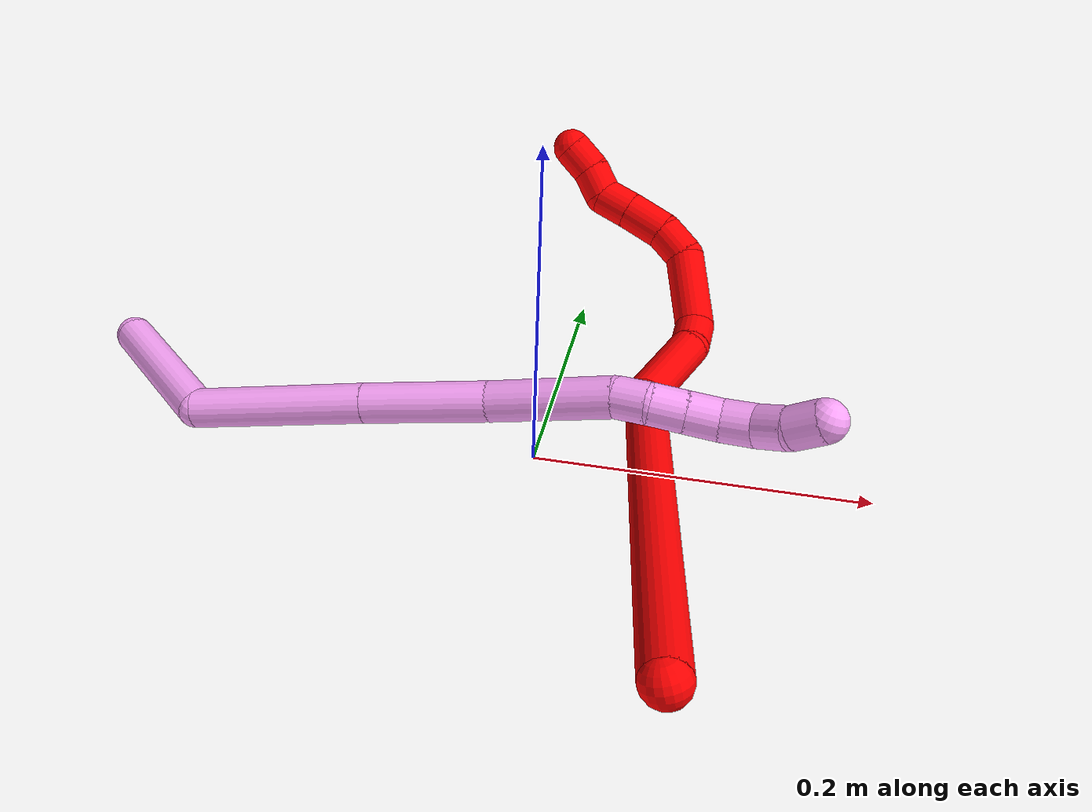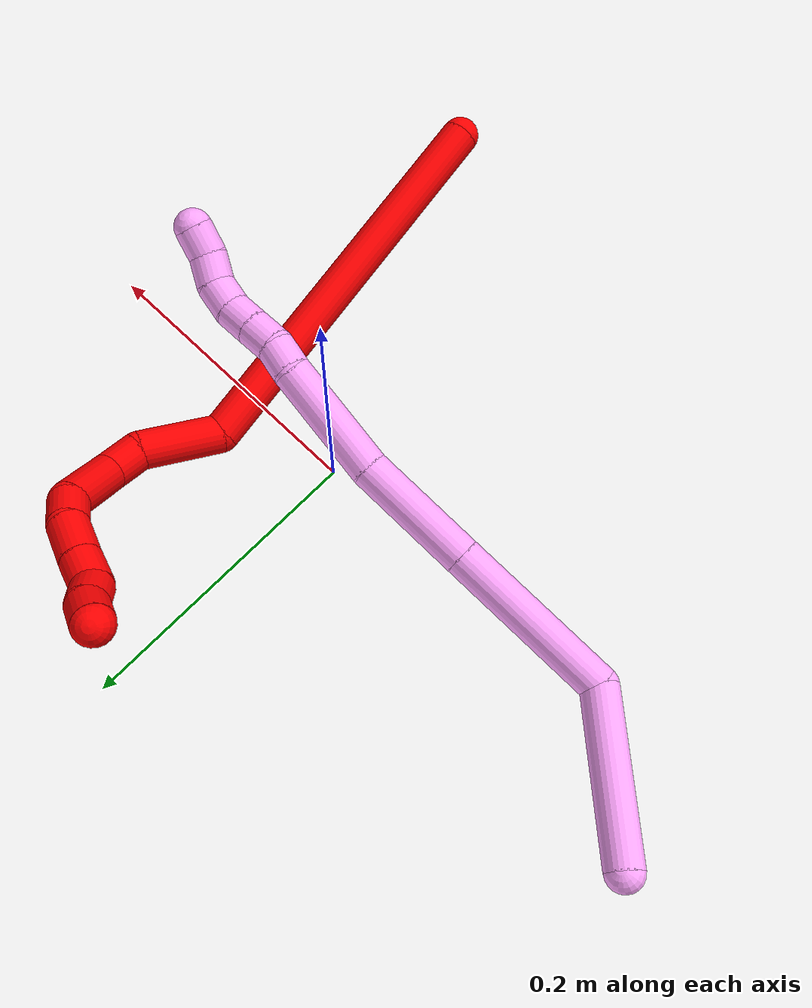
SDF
<sdf version="1.7">
 <world name="default">
  <model name="photoneo_s_sensor">
   <static>1</static>
   <pose>0 0 2 1.57079 1.57079 3.14159</pose>
   <link name="link">
    <inertial><mass>0.1</mass></inertial>
    <sensor name="sensor" type="depth">
     <update_rate>30</update_rate>
     <camera>
      <horizontal_fov>1.22</horizontal_fov>
      <image><width>1920</width><height>1200</height><format>B8G8R8</format></image>
      <clip><near>0.1</near><far>4</far></clip>
      <depth_camera><output>points</output></depth_camera>
     </camera>
     <plugin name="camera_plugin" filename="libgazebo_ros_depth_camera.so">
      <baseline>0.2</baseline>
      <alwaysOn>1</alwaysOn>
      <updateRate>0.0</updateRate>
      <cameraName>camera_ir</cameraName>
      <imageTopicName>/camera/color/image_raw</imageTopicName>
      <cameraInfoTopicName>/camera/color/camera_info</cameraInfoTopicName>
      <depthImageTopicName>/camera/depth/image_raw</depthImageTopicName>
      <depthImageCameraInfoTopicName>/camera/depth/camera_info</depthImageCameraInfoTopicName>
      <pointCloudTopicName>/camera/depth/points</pointCloudTopicName>
      <frameName>fr_optical</frameName>
      <pointCloudCutoff>0.1</pointCloudCutoff>
      <pointCloudCutoffMax>2.0</pointCloudCutoffMax>
      <distortionK1>0</distortionK1>
      <distortionK2>0</distortionK2>
      <distortionK3>0</distortionK3>
      <distortionT1>0</distortionT1>
      <distortionT2>0</distortionT2>
      <CxPrime>0</CxPrime>
      <Cx>0</Cx>
      <Cy>0</Cy>
      <focalLength>0</focalLength>
      <hackBaseline>0</hackBaseline>
     </plugin>
    </sensor>
   </link>
  </model>
  <model name="bin">
   <static>1</static>
   <link name="bottom">
    <collision name="collision-bottom">
     <pose>0 0 -0.01 0 -0 0</pose>
     <geometry><box><size>0.8 0.6 0.02</size></box></geometry>
     <surface>
      <friction><ode><mu>100</mu><mu2>100</mu2></ode></friction>
      <contact><collide_bitmask>65535</collide_bitmask></contact>
     </surface>
    </collision>
   </link>
   <link name="west_wall">
    <collision name="collision-west_wall">
     <pose>-0.41 0 0.1 0 -0 0</pose>
     <geometry><box><size>0.02 0.6 0.2</size></box></geometry>
     <surface>
      <friction><ode><mu>100</mu><mu2>100</mu2></ode></friction>
      <contact><collide_bitmask>65535</collide_bitmask></contact>
     </surface>
    </collision>
   </link>
   <link name="east_wall">
    <collision name="collision-east_wall">
     <pose>0.41 0 0.1 0 -0 0</pose>
     <geometry><box><size>0.02 0.6 0.2</size></box></geometry>
     <surface>
      <friction><ode><mu>100</mu><mu2>100</mu2></ode></friction>
      <contact><collide_bitmask>65535</collide_bitmask></contact>
     </surface>
    </collision>
   </link>
   <link name="south_wall">
    <collision name="collision-south_wall">
     <pose>0 -0.31 0.1 0 -0 0</pose>
     <geometry><box><size>0.8 0.02 0.2</size></box></geometry>
     <surface>
      <friction><ode><mu>100</mu><mu2>100</mu2></ode></friction>
      <contact><collide_bitmask>65535</collide_bitmask></contact>
     </surface>
    </collision>
   </link>
   <link name="north_wall">
    <collision name="collision-north_wall">
     <pose>0 0.31 0.1 0 -0 0</pose>
     <geometry><box><size>0.8 0.02 0.2</size></box></geometry>
     <surface>
      <friction><ode><mu>100</mu><mu2>100</mu2></ode></friction>
      <contact><collide_bitmask>65535</collide_bitmask></contact>
     </surface>
    </collision>
   </link>
  </model>
  <model name="2">
   <static>0</static>
   <link name="2">
    <collision name="collision-cylinder-e_1_1_4">
     <pose>0.032404 0.125306 0.023865 -1.3826 0.248768 -0.206196</pose>
     <geometry><cylinder><radius>0.0125</radius><length>0.263219</length></cylinder></geometry>
     <surface>
      <friction><ode><mu>1.16</mu><mu2>1.16</mu2><slip1>0</slip1><slip2>0</slip2></ode></friction>
      <contact><ode><kp>1e+06</kp><kd>1</kd><max_vel>0</max_vel><min_depth>0.001</min_depth></ode></contact>
     </surface>
    </collision>
    <visual name="visual-cylinder-e_1_1_4">
     <pose>0.032404 0.125306 0.023865 -1.3826 0.248768 -0.206196</pose>
     <geometry><cylinder><radius>0.0125</radius><length>0.263219</length></cylinder></geometry>
     <material><ambient>1 0 0 1</ambient></material>
    </visual>
    <collision name="collision-cylinder-e_2_4_5">
     <pose>0.085238 0.265476 0.055609 -1.08332 0.881918 -0.553368</pose>
     <geometry><cylinder><radius>0.0125</radius><length>0.052931</length></cylinder></geometry>
     <surface>
      <friction><ode><mu>1.16</mu><mu2>1.16</mu2><slip1>0</slip1><slip2>0</slip2></ode></friction>
      <contact><ode><kp>1e+06</kp><kd>1</kd><max_vel>0</max_vel><min_depth>0.001</min_depth></ode></contact>
     </surface>
    </collision>
    <visual name="visual-cylinder-e_2_4_5">
     <pose>0.085238 0.265476 0.055609 -1.08332 0.881918 -0.553368</pose>
     <geometry><cylinder><radius>0.0125</radius><length>0.052931</length></cylinder></geometry>
     <material><ambient>1 0 0 1</ambient></material>
    </visual>
    <collision name="collision-cylinder-e_3_5_6">
     <pose>0.110939 0.289972 0.067263 -1.19744 0.471247 -0.324715</pose>
     <geometry><cylinder><radius>0.0125</radius><length>0.023221</length></cylinder></geometry>
     <surface>
      <friction><ode><mu>1.16</mu><mu2>1.16</mu2><slip1>0</slip1><slip2>0</slip2></ode></friction>
      <contact><ode><kp>1e+06</kp><kd>1</kd><max_vel>0</max_vel><min_depth>0.001</min_depth></ode></contact>
     </surface>
    </collision>
    <visual name="visual-cylinder-e_3_5_6">
     <pose>0.110939 0.289972 0.067263 -1.19744 0.471247 -0.324715</pose>
     <geometry><cylinder><radius>0.0125</radius><length>0.023221</length></cylinder></geometry>
     <material><ambient>1 0 0 1</ambient></material>
    </visual>
    <collision name="collision-cylinder-e_4_6_7">
     <pose>0.120197 0.310371 0.092826 -0.458919 0.162561 -0.038049</pose>
     <geometry><cylinder><radius>0.0125</radius><length>0.04926</length></cylinder></geometry>
     <surface>
      <friction><ode><mu>1.16</mu><mu2>1.16</mu2><slip1>0</slip1><slip2>0</slip2></ode></friction>
      <contact><ode><kp>1e+06</kp><kd>1</kd><max_vel>0</max_vel><min_depth>0.001</min_depth></ode></contact>
     </surface>
    </collision>
    <visual name="visual-cylinder-e_4_6_7">
     <pose>0.120197 0.310371 0.092826 -0.458919 0.162561 -0.038049</pose>
     <geometry><cylinder><radius>0.0125</radius><length>0.04926</length></cylinder></geometry>
     <material><ambient>1 0 0 1</ambient></material>
    </visual>
    <collision name="collision-cylinder-e_5_7_8">
     <pose>0.12009 0.326475 0.123449 -0.543604 -0.377602 0.106405</pose>
     <geometry><cylinder><radius>0.0125</radius><length>0.022204</length></cylinder></geometry>
     <surface>
      <friction><ode><mu>1.16</mu><mu2>1.16</mu2><slip1>0</slip1><slip2>0</slip2></ode></friction>
      <contact><ode><kp>1e+06</kp><kd>1</kd><max_vel>0</max_vel><min_depth>0.001</min_depth></ode></contact>
     </surface>
    </collision>
    <visual name="visual-cylinder-e_5_7_8">
     <pose>0.12009 0.326475 0.123449 -0.543604 -0.377602 0.106405</pose>
     <geometry><cylinder><radius>0.0125</radius><length>0.022204</length></cylinder></geometry>
     <material><ambient>1 0 0 1</ambient></material>
    </visual>
    <collision name="collision-cylinder-e_6_8_9">
     <pose>0.107544 0.33816 0.141106 -0.623508 -0.660947 0.220213</pose>
     <geometry><cylinder><radius>0.0125</radius><length>0.027538</length></cylinder></geometry>
     <surface>
      <friction><ode><mu>1.16</mu><mu2>1.16</mu2><slip1>0</slip1><slip2>0</slip2></ode></friction>
      <contact><ode><kp>1e+06</kp><kd>1</kd><max_vel>0</max_vel><min_depth>0.001</min_depth></ode></contact>
     </surface>
    </collision>
    <visual name="visual-cylinder-e_6_8_9">
     <pose>0.107544 0.33816 0.141106 -0.623508 -0.660947 0.220213</pose>
     <geometry><cylinder><radius>0.0125</radius><length>0.027538</length></cylinder></geometry>
     <material><ambient>1 0 0 1</ambient></material>
    </visual>
    <collision name="collision-cylinder-e_7_9_10">
     <pose>0.092157 0.34917 0.156506 -0.616924 -0.710329 0.235265</pose>
     <geometry><cylinder><radius>0.0125</radius><length>0.021269</length></cylinder></geometry>
     <surface>
      <friction><ode><mu>1.16</mu><mu2>1.16</mu2><slip1>0</slip1><slip2>0</slip2></ode></friction>
      <contact><ode><kp>1e+06</kp><kd>1</kd><max_vel>0</max_vel><min_depth>0.001</min_depth></ode></contact>
     </surface>
    </collision>
    <visual name="visual-cylinder-e_7_9_10">
     <pose>0.092157 0.34917 0.156506 -0.616924 -0.710329 0.235265</pose>
     <geometry><cylinder><radius>0.0125</radius><length>0.021269</length></cylinder></geometry>
     <material><ambient>1 0 0 1</ambient></material>
    </visual>
    <collision name="collision-cylinder-e_8_10_11">
     <pose>0.083533 0.357268 0.172336 -0.355252 -0.169598 0.030517</pose>
     <geometry><cylinder><radius>0.0125</radius><length>0.020028</length></cylinder></geometry>
     <surface>
      <friction><ode><mu>1.16</mu><mu2>1.16</mu2><slip1>0</slip1><slip2>0</slip2></ode></friction>
      <contact><ode><kp>1e+06</kp><kd>1</kd><max_vel>0</max_vel><min_depth>0.001</min_depth></ode></contact>
     </surface>
    </collision>
    <visual name="visual-cylinder-e_8_10_11">
     <pose>0.083533 0.357268 0.172336 -0.355252 -0.169598 0.030517</pose>
     <geometry><cylinder><radius>0.0125</radius><length>0.020028</length></cylinder></geometry>
     <material><ambient>1 0 0 1</ambient></material>
    </visual>
    <collision name="collision-cylinder-e_9_11_2">
     <pose>0.07734 0.363019 0.190404 -0.257162 -0.458944 0.060384</pose>
     <geometry><cylinder><radius>0.0125</radius><length>0.020329</length></cylinder></geometry>
     <surface>
      <friction><ode><mu>1.16</mu><mu2>1.16</mu2><slip1>0</slip1><slip2>0</slip2></ode></friction>
      <contact><ode><kp>1e+06</kp><kd>1</kd><max_vel>0</max_vel><min_depth>0.001</min_depth></ode></contact>
     </surface>
    </collision>
    <visual name="visual-cylinder-e_9_11_2">
     <pose>0.07734 0.363019 0.190404 -0.257162 -0.458944 0.060384</pose>
     <geometry><cylinder><radius>0.0125</radius><length>0.020329</length></cylinder></geometry>
     <material><ambient>1 0 0 1</ambient></material>
    </visual>
    <collision name="collision-sphere-2">
     <pose>0.072837 0.365337 0.199217 0 -0 0</pose>
     <geometry><sphere><radius>0.0125</radius></sphere></geometry>
     <surface>
      <friction><ode><mu>1.16</mu><mu2>1.16</mu2><slip1>0</slip1><slip2>0</slip2></ode></friction>
      <contact><ode><kp>1e+06</kp><kd>1</kd><max_vel>0</max_vel><min_depth>0.001</min_depth></ode></contact>
     </surface>
    </collision>
    <visual name="visual-sphere-2">
     <pose>0.072837 0.365337 0.199217 0 -0 0</pose>
     <geometry><sphere><radius>0.0125</radius></sphere></geometry>
     <material><ambient>1 0 0 1</ambient></material>
    </visual>
    <collision name="collision-sphere-11">
     <pose>0.081843 0.360701 0.18159 0 -0 0</pose>
     <geometry><sphere><radius>0.0125</radius></sphere></geometry>
     <surface>
      <friction><ode><mu>1.16</mu><mu2>1.16</mu2><slip1>0</slip1><slip2>0</slip2></ode></friction>
      <contact><ode><kp>1e+06</kp><kd>1</kd><max_vel>0</max_vel><min_depth>0.001</min_depth></ode></contact>
     </surface>
    </collision>
    <visual name="visual-sphere-11">
     <pose>0.081843 0.360701 0.18159 0 -0 0</pose>
     <geometry><sphere><radius>0.0125</radius></sphere></geometry>
     <material><ambient>1 0 0 1</ambient></material>
    </visual>
    <collision name="collision-sphere-10">
     <pose>0.085223 0.353835 0.163082 0 -0 0</pose>
     <geometry><sphere><radius>0.0125</radius></sphere></geometry>
     <surface>
      <friction><ode><mu>1.16</mu><mu2>1.16</mu2><slip1>0</slip1><slip2>0</slip2></ode></friction>
      <contact><ode><kp>1e+06</kp><kd>1</kd><max_vel>0</max_vel><min_depth>0.001</min_depth></ode></contact>
     </surface>
    </collision>
    <visual name="visual-sphere-10">
     <pose>0.085223 0.353835 0.163082 0 -0 0</pose>
     <geometry><sphere><radius>0.0125</radius></sphere></geometry>
     <material><ambient>1 0 0 1</ambient></material>
    </visual>
    <collision name="collision-sphere-9">
     <pose>0.099092 0.344506 0.14993 0 -0 0</pose>
     <geometry><sphere><radius>0.0125</radius></sphere></geometry>
     <surface>
      <friction><ode><mu>1.16</mu><mu2>1.16</mu2><slip1>0</slip1><slip2>0</slip2></ode></friction>
      <contact><ode><kp>1e+06</kp><kd>1</kd><max_vel>0</max_vel><min_depth>0.001</min_depth></ode></contact>
     </surface>
    </collision>
    <visual name="visual-sphere-9">
     <pose>0.099092 0.344506 0.14993 0 -0 0</pose>
     <geometry><sphere><radius>0.0125</radius></sphere></geometry>
     <material><ambient>1 0 0 1</ambient></material>
    </visual>
    <collision name="collision-sphere-4">
     <pose>0.064807 0.250612 0.047729 0 -0 0</pose>
     <geometry><sphere><radius>0.0125</radius></sphere></geometry>
     <surface>
      <friction><ode><mu>1.16</mu><mu2>1.16</mu2><slip1>0</slip1><slip2>0</slip2></ode></friction>
      <contact><ode><kp>1e+06</kp><kd>1</kd><max_vel>0</max_vel><min_depth>0.001</min_depth></ode></contact>
     </surface>
    </collision>
    <visual name="visual-sphere-4">
     <pose>0.064807 0.250612 0.047729 0 -0 0</pose>
     <geometry><sphere><radius>0.0125</radius></sphere></geometry>
     <material><ambient>1 0 0 1</ambient></material>
    </visual>
    <collision name="collision-sphere-1">
     <geometry><sphere><radius>0.0125</radius></sphere></geometry>
     <surface>
      <friction><ode><mu>1.16</mu><mu2>1.16</mu2><slip1>0</slip1><slip2>0</slip2></ode></friction>
      <contact><ode><kp>1e+06</kp><kd>1</kd><max_vel>0</max_vel><min_depth>0.001</min_depth></ode></contact>
     </surface>
    </collision>
    <visual name="visual-sphere-1">
     <geometry><sphere><radius>0.0125</radius></sphere></geometry>
     <material><ambient>1 0 0 1</ambient></material>
    </visual>
    <collision name="collision-sphere-8">
     <pose>0.115996 0.331813 0.132282 0 -0 0</pose>
     <geometry><sphere><radius>0.0125</radius></sphere></geometry>
     <surface>
      <friction><ode><mu>1.16</mu><mu2>1.16</mu2><slip1>0</slip1><slip2>0</slip2></ode></friction>
      <contact><ode><kp>1e+06</kp><kd>1</kd><max_vel>0</max_vel><min_depth>0.001</min_depth></ode></contact>
     </surface>
    </collision>
    <visual name="visual-sphere-8">
     <pose>0.115996 0.331813 0.132282 0 -0 0</pose>
     <geometry><sphere><radius>0.0125</radius></sphere></geometry>
     <material><ambient>1 0 0 1</ambient></material>
    </visual>
    <collision name="collision-sphere-5">
     <pose>0.105668 0.28034 0.063489 0 -0 0</pose>
     <geometry><sphere><radius>0.0125</radius></sphere></geometry>
     <surface>
      <friction><ode><mu>1.16</mu><mu2>1.16</mu2><slip1>0</slip1><slip2>0</slip2></ode></friction>
      <contact><ode><kp>1e+06</kp><kd>1</kd><max_vel>0</max_vel><min_depth>0.001</min_depth></ode></contact>
     </surface>
    </collision>
    <visual name="visual-sphere-5">
     <pose>0.105668 0.28034 0.063489 0 -0 0</pose>
     <geometry><sphere><radius>0.0125</radius></sphere></geometry>
     <material><ambient>1 0 0 1</ambient></material>
    </visual>
    <collision name="collision-sphere-6">
     <pose>0.11621 0.299604 0.071036 0 -0 0</pose>
     <geometry><sphere><radius>0.0125</radius></sphere></geometry>
     <surface>
      <friction><ode><mu>1.16</mu><mu2>1.16</mu2><slip1>0</slip1><slip2>0</slip2></ode></friction>
      <contact><ode><kp>1e+06</kp><kd>1</kd><max_vel>0</max_vel><min_depth>0.001</min_depth></ode></contact>
     </surface>
    </collision>
    <visual name="visual-sphere-6">
     <pose>0.11621 0.299604 0.071036 0 -0 0</pose>
     <geometry><sphere><radius>0.0125</radius></sphere></geometry>
     <material><ambient>1 0 0 1</ambient></material>
    </visual>
    <collision name="collision-sphere-7">
     <pose>0.124183 0.321138 0.114617 0 -0 0</pose>
     <geometry><sphere><radius>0.0125</radius></sphere></geometry>
     <surface>
      <friction><ode><mu>1.16</mu><mu2>1.16</mu2><slip1>0</slip1><slip2>0</slip2></ode></friction>
      <contact><ode><kp>1e+06</kp><kd>1</kd><max_vel>0</max_vel><min_depth>0.001</min_depth></ode></contact>
     </surface>
    </collision>
    <visual name="visual-sphere-7">
     <pose>0.124183 0.321138 0.114617 0 -0 0</pose>
     <geometry><sphere><radius>0.0125</radius></sphere></geometry>
     <material><ambient>1 0 0 1</ambient></material>
    </visual>
    <inertial>
     <pose>0.064743 0.215161 0.065275 0 -0 0</pose>
     <mass>0.5</mass>
     <inertia>
      <ixx>0.001178</ixx>
      <ixy>0</ixy>
      <ixz>0</ixz>
      <iyy>0.000107</iyy>
      <iyz>0</iyz>
      <izz>-0.001846</izz>
     </inertia>
    </inertial>
   </link>
   <pose>0.096779 -0.220301 0.055187 -0.336547 -0.185166 0.407675</pose>
  </model>
  <model name="4">
   <static>0</static>
   <link name="4">
    <collision name="collision-cylinder-e_1_1_4">
     <pose>0.019058 -0.05067 0.005323 1.46613 0.357944 0.32296</pose>
     <geometry><cylinder><radius>0.0125</radius><length>0.108793</length></cylinder></geometry>
     <surface>
      <friction><ode><mu>1.16</mu><mu2>1.16</mu2><slip1>0</slip1><slip2>0</slip2></ode></friction>
      <contact><ode><kp>1e+06</kp><kd>1</kd><max_vel>0</max_vel><min_depth>0.001</min_depth></ode></contact>
     </surface>
    </collision>
    <visual name="visual-cylinder-e_1_1_4">
     <pose>0.019058 -0.05067 0.005323 1.46613 0.357944 0.32296</pose>
     <geometry><cylinder><radius>0.0125</radius><length>0.108793</length></cylinder></geometry>
     <material><ambient>1 0.65098 0.996078 1</ambient></material>
    </visual>
    <collision name="collision-cylinder-e_2_4_5">
     <pose>0.082935 -0.124894 0.036263 0.743458 0.910578 0.377204</pose>
     <geometry><cylinder><radius>0.0125</radius><length>0.113486</length></cylinder></geometry>
     <surface>
      <friction><ode><mu>1.16</mu><mu2>1.16</mu2><slip1>0</slip1><slip2>0</slip2></ode></friction>
      <contact><ode><kp>1e+06</kp><kd>1</kd><max_vel>0</max_vel><min_depth>0.001</min_depth></ode></contact>
     </surface>
    </collision>
    <visual name="visual-cylinder-e_2_4_5">
     <pose>0.082935 -0.124894 0.036263 0.743458 0.910578 0.377204</pose>
     <geometry><cylinder><radius>0.0125</radius><length>0.113486</length></cylinder></geometry>
     <material><ambient>1 0.65098 0.996078 1</ambient></material>
    </visual>
    <collision name="collision-cylinder-e_3_5_6">
     <pose>0.159048 -0.16513 0.079223 0.76597 0.915279 0.391756</pose>
     <geometry><cylinder><radius>0.0125</radius><length>0.078952</length></cylinder></geometry>
     <surface>
      <friction><ode><mu>1.16</mu><mu2>1.16</mu2><slip1>0</slip1><slip2>0</slip2></ode></friction>
      <contact><ode><kp>1e+06</kp><kd>1</kd><max_vel>0</max_vel><min_depth>0.001</min_depth></ode></contact>
     </surface>
    </collision>
    <visual name="visual-cylinder-e_3_5_6">
     <pose>0.159048 -0.16513 0.079223 0.76597 0.915279 0.391756</pose>
     <geometry><cylinder><radius>0.0125</radius><length>0.078952</length></cylinder></geometry>
     <material><ambient>1 0.65098 0.996078 1</ambient></material>
    </visual>
    <collision name="collision-cylinder-e_4_6_7">
     <pose>0.217248 -0.201903 0.116071 0.80021 0.765439 0.337273</pose>
     <geometry><cylinder><radius>0.0125</radius><length>0.077668</length></cylinder></geometry>
     <surface>
      <friction><ode><mu>1.16</mu><mu2>1.16</mu2><slip1>0</slip1><slip2>0</slip2></ode></friction>
      <contact><ode><kp>1e+06</kp><kd>1</kd><max_vel>0</max_vel><min_depth>0.001</min_depth></ode></contact>
     </surface>
    </collision>
    <visual name="visual-cylinder-e_4_6_7">
     <pose>0.217248 -0.201903 0.116071 0.80021 0.765439 0.337273</pose>
     <geometry><cylinder><radius>0.0125</radius><length>0.077668</length></cylinder></geometry>
     <material><ambient>1 0.65098 0.996078 1</ambient></material>
    </visual>
    <collision name="collision-cylinder-e_5_7_8">
     <pose>0.251267 -0.228435 0.138743 1.11384 0.780956 0.501796</pose>
     <geometry><cylinder><radius>0.0125</radius><length>0.020208</length></cylinder></geometry>
     <surface>
      <friction><ode><mu>1.16</mu><mu2>1.16</mu2><slip1>0</slip1><slip2>0</slip2></ode></friction>
      <contact><ode><kp>1e+06</kp><kd>1</kd><max_vel>0</max_vel><min_depth>0.001</min_depth></ode></contact>
     </surface>
    </collision>
    <visual name="visual-cylinder-e_5_7_8">
     <pose>0.251267 -0.228435 0.138743 1.11384 0.780956 0.501796</pose>
     <geometry><cylinder><radius>0.0125</radius><length>0.020208</length></cylinder></geometry>
     <material><ambient>1 0.65098 0.996078 1</ambient></material>
    </visual>
    <collision name="collision-cylinder-e_6_8_9">
     <pose>0.267229 -0.239571 0.14383 1.18253 1.05021 0.741936</pose>
     <geometry><cylinder><radius>0.0125</radius><length>0.0204</length></cylinder></geometry>
     <surface>
      <friction><ode><mu>1.16</mu><mu2>1.16</mu2><slip1>0</slip1><slip2>0</slip2></ode></friction>
      <contact><ode><kp>1e+06</kp><kd>1</kd><max_vel>0</max_vel><min_depth>0.001</min_depth></ode></contact>
     </surface>
    </collision>
    <visual name="visual-cylinder-e_6_8_9">
     <pose>0.267229 -0.239571 0.14383 1.18253 1.05021 0.741936</pose>
     <geometry><cylinder><radius>0.0125</radius><length>0.0204</length></cylinder></geometry>
     <material><ambient>1 0.65098 0.996078 1</ambient></material>
    </visual>
    <collision name="collision-cylinder-e_7_9_10">
     <pose>0.284774 -0.248889 0.147675 1.17626 1.04843 0.735985</pose>
     <geometry><cylinder><radius>0.0125</radius><length>0.020069</length></cylinder></geometry>
     <surface>
      <friction><ode><mu>1.16</mu><mu2>1.16</mu2><slip1>0</slip1><slip2>0</slip2></ode></friction>
      <contact><ode><kp>1e+06</kp><kd>1</kd><max_vel>0</max_vel><min_depth>0.001</min_depth></ode></contact>
     </surface>
    </collision>
    <visual name="visual-cylinder-e_7_9_10">
     <pose>0.284774 -0.248889 0.147675 1.17626 1.04843 0.735985</pose>
     <geometry><cylinder><radius>0.0125</radius><length>0.020069</length></cylinder></geometry>
     <material><ambient>1 0.65098 0.996078 1</ambient></material>
    </visual>
    <collision name="collision-cylinder-e_8_10_11">
     <pose>0.300657 -0.25979 0.153136 1.05791 0.783964 0.47416</pose>
     <geometry><cylinder><radius>0.0125</radius><length>0.020355</length></cylinder></geometry>
     <surface>
      <friction><ode><mu>1.16</mu><mu2>1.16</mu2><slip1>0</slip1><slip2>0</slip2></ode></friction>
      <contact><ode><kp>1e+06</kp><kd>1</kd><max_vel>0</max_vel><min_depth>0.001</min_depth></ode></contact>
     </surface>
    </collision>
    <visual name="visual-cylinder-e_8_10_11">
     <pose>0.300657 -0.25979 0.153136 1.05791 0.783964 0.47416</pose>
     <geometry><cylinder><radius>0.0125</radius><length>0.020355</length></cylinder></geometry>
     <material><ambient>1 0.65098 0.996078 1</ambient></material>
    </visual>
    <collision name="collision-cylinder-e_9_11_12">
     <pose>0.311592 -0.273837 0.161768 0.990193 0.383526 0.208899</pose>
     <geometry><cylinder><radius>0.0125</radius><length>0.020034</length></cylinder></geometry>
     <surface>
      <friction><ode><mu>1.16</mu><mu2>1.16</mu2><slip1>0</slip1><slip2>0</slip2></ode></friction>
      <contact><ode><kp>1e+06</kp><kd>1</kd><max_vel>0</max_vel><min_depth>0.001</min_depth></ode></contact>
     </surface>
    </collision>
    <visual name="visual-cylinder-e_9_11_12">
     <pose>0.311592 -0.273837 0.161768 0.990193 0.383526 0.208899</pose>
     <geometry><cylinder><radius>0.0125</radius><length>0.020034</length></cylinder></geometry>
     <material><ambient>1 0.65098 0.996078 1</ambient></material>
    </visual>
    <collision name="collision-cylinder-e_10_12_2">
     <pose>0.319814 -0.28721 0.173855 0.675869 0.463004 0.165299</pose>
     <geometry><cylinder><radius>0.0125</radius><length>0.020034</length></cylinder></geometry>
     <surface>
      <friction><ode><mu>1.16</mu><mu2>1.16</mu2><slip1>0</slip1><slip2>0</slip2></ode></friction>
      <contact><ode><kp>1e+06</kp><kd>1</kd><max_vel>0</max_vel><min_depth>0.001</min_depth></ode></contact>
     </surface>
    </collision>
    <visual name="visual-cylinder-e_10_12_2">
     <pose>0.319814 -0.28721 0.173855 0.675869 0.463004 0.165299</pose>
     <geometry><cylinder><radius>0.0125</radius><length>0.020034</length></cylinder></geometry>
     <material><ambient>1 0.65098 0.996078 1</ambient></material>
    </visual>
    <collision name="collision-sphere-2">
     <pose>0.324288 -0.292817 0.180847 0 -0 0</pose>
     <geometry><sphere><radius>0.0125</radius></sphere></geometry>
     <surface>
      <friction><ode><mu>1.16</mu><mu2>1.16</mu2><slip1>0</slip1><slip2>0</slip2></ode></friction>
      <contact><ode><kp>1e+06</kp><kd>1</kd><max_vel>0</max_vel><min_depth>0.001</min_depth></ode></contact>
     </surface>
    </collision>
    <visual name="visual-sphere-2">
     <pose>0.324288 -0.292817 0.180847 0 -0 0</pose>
     <geometry><sphere><radius>0.0125</radius></sphere></geometry>
     <material><ambient>1 0.65098 0.996078 1</ambient></material>
    </visual>
    <collision name="collision-sphere-12">
     <pose>0.31534 -0.281604 0.166863 0 -0 0</pose>
     <geometry><sphere><radius>0.0125</radius></sphere></geometry>
     <surface>
      <friction><ode><mu>1.16</mu><mu2>1.16</mu2><slip1>0</slip1><slip2>0</slip2></ode></friction>
      <contact><ode><kp>1e+06</kp><kd>1</kd><max_vel>0</max_vel><min_depth>0.001</min_depth></ode></contact>
     </surface>
    </collision>
    <visual name="visual-sphere-12">
     <pose>0.31534 -0.281604 0.166863 0 -0 0</pose>
     <geometry><sphere><radius>0.0125</radius></sphere></geometry>
     <material><ambient>1 0.65098 0.996078 1</ambient></material>
    </visual>
    <collision name="collision-sphere-11">
     <pose>0.307843 -0.26607 0.156672 0 -0 0</pose>
     <geometry><sphere><radius>0.0125</radius></sphere></geometry>
     <surface>
      <friction><ode><mu>1.16</mu><mu2>1.16</mu2><slip1>0</slip1><slip2>0</slip2></ode></friction>
      <contact><ode><kp>1e+06</kp><kd>1</kd><max_vel>0</max_vel><min_depth>0.001</min_depth></ode></contact>
     </surface>
    </collision>
    <visual name="visual-sphere-11">
     <pose>0.307843 -0.26607 0.156672 0 -0 0</pose>
     <geometry><sphere><radius>0.0125</radius></sphere></geometry>
     <material><ambient>1 0.65098 0.996078 1</ambient></material>
    </visual>
    <collision name="collision-sphere-10">
     <pose>0.293471 -0.253511 0.1496 0 -0 0</pose>
     <geometry><sphere><radius>0.0125</radius></sphere></geometry>
     <surface>
      <friction><ode><mu>1.16</mu><mu2>1.16</mu2><slip1>0</slip1><slip2>0</slip2></ode></friction>
      <contact><ode><kp>1e+06</kp><kd>1</kd><max_vel>0</max_vel><min_depth>0.001</min_depth></ode></contact>
     </surface>
    </collision>
    <visual name="visual-sphere-10">
     <pose>0.293471 -0.253511 0.1496 0 -0 0</pose>
     <geometry><sphere><radius>0.0125</radius></sphere></geometry>
     <material><ambient>1 0.65098 0.996078 1</ambient></material>
    </visual>
    <collision name="collision-sphere-9">
     <pose>0.276078 -0.244267 0.145751 0 -0 0</pose>
     <geometry><sphere><radius>0.0125</radius></sphere></geometry>
     <surface>
      <friction><ode><mu>1.16</mu><mu2>1.16</mu2><slip1>0</slip1><slip2>0</slip2></ode></friction>
      <contact><ode><kp>1e+06</kp><kd>1</kd><max_vel>0</max_vel><min_depth>0.001</min_depth></ode></contact>
     </surface>
    </collision>
    <visual name="visual-sphere-9">
     <pose>0.276078 -0.244267 0.145751 0 -0 0</pose>
     <geometry><sphere><radius>0.0125</radius></sphere></geometry>
     <material><ambient>1 0.65098 0.996078 1</ambient></material>
    </visual>
    <collision name="collision-sphere-4">
     <pose>0.038116 -0.10134 0.010646 0 -0 0</pose>
     <geometry><sphere><radius>0.0125</radius></sphere></geometry>
     <surface>
      <friction><ode><mu>1.16</mu><mu2>1.16</mu2><slip1>0</slip1><slip2>0</slip2></ode></friction>
      <contact><ode><kp>1e+06</kp><kd>1</kd><max_vel>0</max_vel><min_depth>0.001</min_depth></ode></contact>
     </surface>
    </collision>
    <visual name="visual-sphere-4">
     <pose>0.038116 -0.10134 0.010646 0 -0 0</pose>
     <geometry><sphere><radius>0.0125</radius></sphere></geometry>
     <material><ambient>1 0.65098 0.996078 1</ambient></material>
    </visual>
    <collision name="collision-sphere-1">
     <geometry><sphere><radius>0.0125</radius></sphere></geometry>
     <surface>
      <friction><ode><mu>1.16</mu><mu2>1.16</mu2><slip1>0</slip1><slip2>0</slip2></ode></friction>
      <contact><ode><kp>1e+06</kp><kd>1</kd><max_vel>0</max_vel><min_depth>0.001</min_depth></ode></contact>
     </surface>
    </collision>
    <visual name="visual-sphere-1">
     <geometry><sphere><radius>0.0125</radius></sphere></geometry>
     <material><ambient>1 0.65098 0.996078 1</ambient></material>
    </visual>
    <collision name="collision-sphere-8">
     <pose>0.25838 -0.234875 0.141909 0 -0 0</pose>
     <geometry><sphere><radius>0.0125</radius></sphere></geometry>
     <surface>
      <friction><ode><mu>1.16</mu><mu2>1.16</mu2><slip1>0</slip1><slip2>0</slip2></ode></friction>
      <contact><ode><kp>1e+06</kp><kd>1</kd><max_vel>0</max_vel><min_depth>0.001</min_depth></ode></contact>
     </surface>
    </collision>
    <visual name="visual-sphere-8">
     <pose>0.25838 -0.234875 0.141909 0 -0 0</pose>
     <geometry><sphere><radius>0.0125</radius></sphere></geometry>
     <material><ambient>1 0.65098 0.996078 1</ambient></material>
    </visual>
    <collision name="collision-sphere-5">
     <pose>0.127754 -0.148448 0.061881 0 -0 0</pose>
     <geometry><sphere><radius>0.0125</radius></sphere></geometry>
     <surface>
      <friction><ode><mu>1.16</mu><mu2>1.16</mu2><slip1>0</slip1><slip2>0</slip2></ode></friction>
      <contact><ode><kp>1e+06</kp><kd>1</kd><max_vel>0</max_vel><min_depth>0.001</min_depth></ode></contact>
     </surface>
    </collision>
    <visual name="visual-sphere-5">
     <pose>0.127754 -0.148448 0.061881 0 -0 0</pose>
     <geometry><sphere><radius>0.0125</radius></sphere></geometry>
     <material><ambient>1 0.65098 0.996078 1</ambient></material>
    </visual>
    <collision name="collision-sphere-6">
     <pose>0.190341 -0.181811 0.096566 0 -0 0</pose>
     <geometry><sphere><radius>0.0125</radius></sphere></geometry>
     <surface>
      <friction><ode><mu>1.16</mu><mu2>1.16</mu2><slip1>0</slip1><slip2>0</slip2></ode></friction>
      <contact><ode><kp>1e+06</kp><kd>1</kd><max_vel>0</max_vel><min_depth>0.001</min_depth></ode></contact>
     </surface>
    </collision>
    <visual name="visual-sphere-6">
     <pose>0.190341 -0.181811 0.096566 0 -0 0</pose>
     <geometry><sphere><radius>0.0125</radius></sphere></geometry>
     <material><ambient>1 0.65098 0.996078 1</ambient></material>
    </visual>
    <collision name="collision-sphere-7">
     <pose>0.244154 -0.221995 0.135577 0 -0 0</pose>
     <geometry><sphere><radius>0.0125</radius></sphere></geometry>
     <surface>
      <friction><ode><mu>1.16</mu><mu2>1.16</mu2><slip1>0</slip1><slip2>0</slip2></ode></friction>
      <contact><ode><kp>1e+06</kp><kd>1</kd><max_vel>0</max_vel><min_depth>0.001</min_depth></ode></contact>
     </surface>
    </collision>
    <visual name="visual-sphere-7">
     <pose>0.244154 -0.221995 0.135577 0 -0 0</pose>
     <geometry><sphere><radius>0.0125</radius></sphere></geometry>
     <material><ambient>1 0.65098 0.996078 1</ambient></material>
    </visual>
    <inertial>
     <pose>0.151859 -0.158863 0.077014 0 -0 0</pose>
     <mass>0.5</mass>
     <inertia><ixx>0.00034</ixx><ixy>0</ixy><ixz>0</ixz><iyy>0.000276</iyy><iyz>0</iyz><izz>7e-06</izz></inertia>
    </inertial>
   </link>
   <pose>-0.297293 0.060654 0.015307 0.011086 0.337599 0.469867</pose>
  </model>
 </world>
</sdf>
